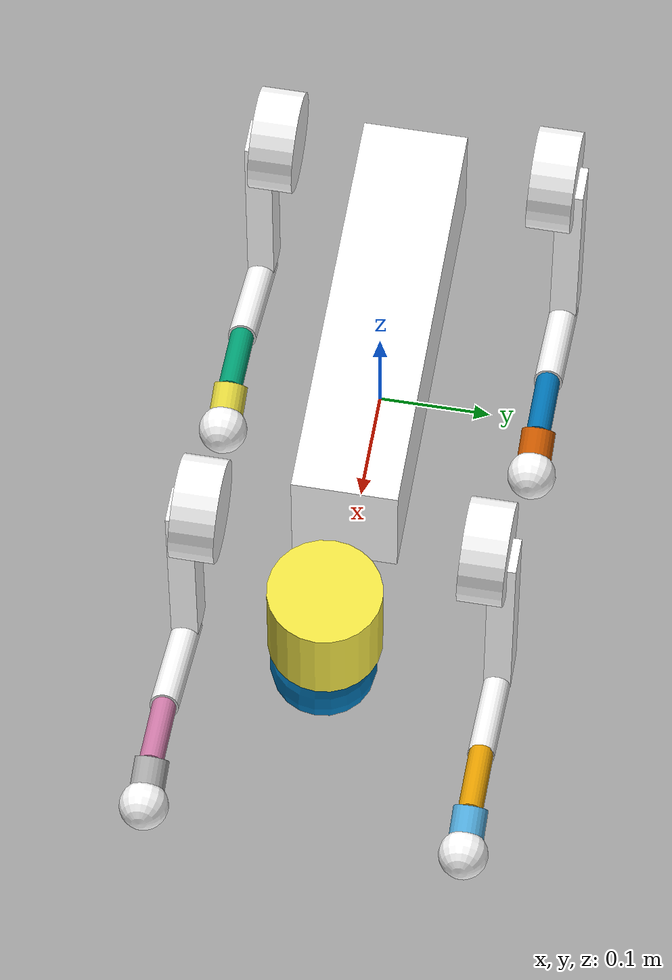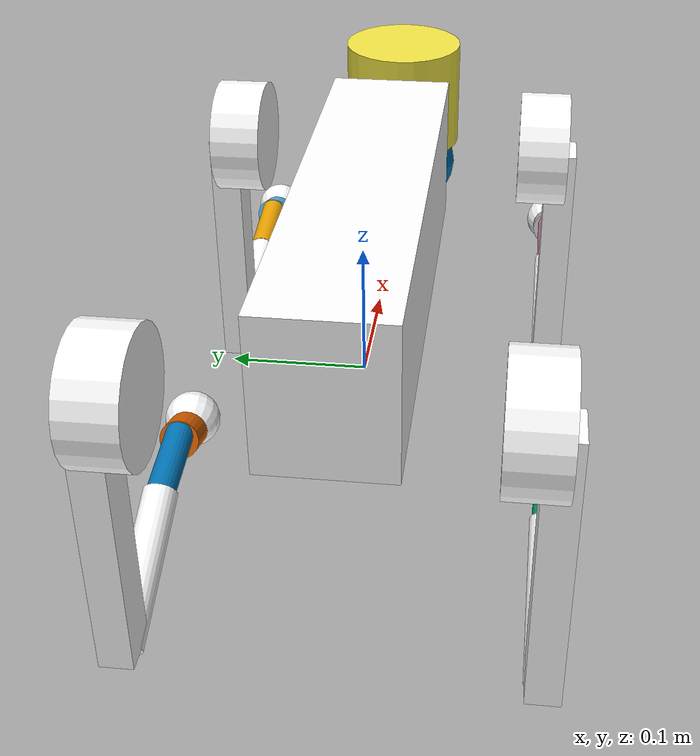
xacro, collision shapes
<?xml version="1.0" encoding="utf-8"?>

<robot name="go2" xmlns:xacro="http://www.ros.org/wiki/xacro">

  <xacro:property name="body_height" value="0.1"/>
  <xacro:property name="deg2rad"  value ="${(pi/180.0)}"/>
  <xacro:property name="damping"  value="0.5"/>
  <xacro:property name="calf_damping"  value="0.05"/>
  <xacro:property name="friction" value="0.2"/>
  <xacro:property name="calf_friction" value="0.8"/>

  <xacro:macro name="transmission_block" params="joint_name">
    <transmission name="tran1">
      <type>transmission_interface/SimpleTransmission</type>
      <joint name="${joint_name}">
        <hardwareInterface>hardware_interface/EffortJointInterface</hardwareInterface>
      </joint>
      <actuator name="motor1">
        <hardwareInterface>hardware_interface/EffortJointInterface</hardwareInterface>
        <mechanicalReduction>1</mechanicalReduction>
      </actuator>
    </transmission>
  </xacro:macro>

   <link name="world"/>

    <joint name="fixed_joint" type="fixed">
        <parent link="world"/>
        <child link="Base_Link"/>
        <origin rpy="0 0 0" xyz="0 0 ${body_height}"/>
    </joint>

    <link name="Base_Link"/>

    <joint name="Body" type="fixed">
        <parent link="Base_Link" />
        <child link="base" />
        <origin rpy="0 0 0" xyz="0 0 0"/>
    </joint>

  <link name="base">

    <inertial>
      <origin xyz="0.021112 0 -0.005366" rpy="0 0 0" />
      <mass value="6.921" />
      <inertia ixx="0.02448" ixy="0.00012166" ixz="0.0014849" iyy="0.098077" iyz="-3.12E-05" izz="0.107" />
    </inertial>

    <visual>
      <origin xyz="0 0 0" rpy="0 0 0" />
      <geometry>
        <mesh filename="$(find go2_description)/meshes/base.dae" />
      </geometry>
      <material name="">
        <color rgba="1 1 1 1" />
      </material>
    </visual>

    <collision>
      <origin rpy="0 0 0" xyz="0 0 0" />
      <geometry>
        <box size="0.3762 0.0935 0.114" />
      </geometry>
    </collision>

  </link>

  <link name="Head_upper">

    <inertial>
      <origin xyz="0 0 0" rpy="0 0 0" />
      <mass value="0.001" />
      <inertia ixx="9.6e-06" ixy="0" ixz="0" iyy="9.6e-06" iyz="0" izz="9.6e-06" />
    </inertial>

    <collision>
      <origin xyz="0 0 0" rpy="0 0 0" />
      <geometry>
        <cylinder radius="0.05" length="0.09" />
      </geometry>
    </collision>

  </link>

  <joint name="Head_upper_joint" type="fixed" dont_collapse="true">

    <origin xyz="0.285 0 0.01" rpy="0 0 0" />
    <parent link="base" />
    <child link="Head_upper" />
    <axis xyz="0 0 0" />

  </joint>

  <link name="Head_lower">

    <inertial>
      <origin xyz="0 0 0" rpy="0 0 0" />
      <mass value="0.001" />
      <inertia ixx="9.6e-06" ixy="0" ixz="0" iyy="9.6e-06" iyz="0" izz="9.6e-06" />
    </inertial>

    <collision>
      <origin xyz="0 0 0" rpy="0 0 0" />
      <geometry>
        <sphere radius="0.047" />
      </geometry>
    </collision>

  </link>

  <joint name="Head_lower_joint" type="fixed" dont_collapse="true">

    <origin xyz="0.008 0 -0.07" rpy="0 0 0" />
    <parent link="Head_upper" />
    <child link="Head_lower" />
    <axis xyz="0 0 0" />

  </joint>

  <link name="FL_hip">

    <inertial>
      <origin xyz="-0.0054 0.00194 -0.000105" rpy="0 0 0" />
      <mass value="0.678" />
      <inertia ixx="0.00048" ixy="-3.01E-06" ixz="1.11E-06" iyy="0.000884" iyz="-1.42E-06" izz="0.000596" />
    </inertial>

    <visual>
      <origin xyz="0 0 0" rpy="0 0 0" />
      <geometry>
        <mesh filename="$(find go2_description)/meshes/hip.dae" />
      </geometry>
      <material name="">
        <color rgba="1 1 1 1" />
      </material>
    </visual>

    <collision>
      <origin rpy="1.5707963267948966 0 0" xyz="0 0.08 0" />
      <geometry>
        <cylinder length="0.04" radius="0.046" />
      </geometry>
    </collision>

  </link>

  <joint name="FL_hip_joint" type="revolute">

    <origin xyz="0.1934 0.0465 0" rpy="0 0 0" />
    <parent link="base" />
    <child link="FL_hip" />
    <axis xyz="1 0 0" />
    <limit lower="-1.0472" upper="1.0472" effort="23.7" velocity="30.1" />
    <dynamics damping="${damping}" friction="${friction}"/>

  </joint>

  <link name="FL_thigh">

    <inertial>
      <origin xyz="-0.00374 -0.0223 -0.0327" rpy="0 0 0" />
      <mass value="1.152" />
      <inertia ixx="0.00584" ixy="8.72E-05" ixz="-0.000289" iyy="0.0058" iyz="0.000808" izz="0.00103" />
    </inertial>

    <visual>
      <origin xyz="0 0 0" rpy="0 0 0" />
      <geometry>
        <mesh filename="$(find go2_description)/meshes/thigh.dae" />
      </geometry>
      <material name="">
        <color rgba="1 1 1 1" />
      </material>
    </visual>

    <collision>
      <origin rpy="0 1.5707963267948966 0" xyz="0 0 -0.1065" />
      <geometry>
        <box size="0.213 0.0245 0.034" />
      </geometry>
    </collision>

  </link>

  <joint name="FL_thigh_joint" type="revolute">

    <origin xyz="0 0.0955 0" rpy="0 0 0" />
    <parent link="FL_hip" />
    <child link="FL_thigh" />
    <axis xyz="0 1 0" />
    <limit lower="-1.5708" upper="3.4907" effort="23.7" velocity="30.1" />
    <dynamics damping="${damping}" friction="${friction}"/>

  </joint>

  <link name="FL_calf">

    <inertial>
      <origin xyz="0.00548 -0.000975 -0.115" rpy="0 0 0" />
      <mass value="0.154" />
      <inertia ixx="0.00108" ixy="3.4E-07" ixz="1.72E-05" iyy="0.0011" iyz="8.28E-06" izz="3.29E-05" />
    </inertial>

    <visual>
      <origin xyz="0 0 0" rpy="0 0 0" />
      <geometry>
        <mesh filename="$(find go2_description)/meshes/calf.dae" />
      </geometry>
      <material name="">
        <color rgba="1 1 1 1" />
      </material>
    </visual>

    <collision>
      <origin rpy="0 -0.21 0" xyz="0.008 0 -0.06" />
      <geometry>
        <cylinder length="0.12" radius="0.012" />
      </geometry>
    </collision>

  </link>

  <joint name="FL_calf_joint" type="revolute">

    <origin xyz="0 0 -0.213" rpy="0 0 0" />
    <parent link="FL_thigh" />
    <child link="FL_calf" />
    <axis xyz="0 1 0" />
    <limit lower="-2.7227" upper="-0.83776" effort="45.43" velocity="15.70" />
    <dynamics damping="${calf_damping}" friction="${calf_friction}"/>

  </joint>

  <link name="FL_calflower">

    <collision>
      <origin rpy="0 0 0" xyz="0 0 0" />
      <geometry>
        <cylinder length="0.065" radius="0.011" />
      </geometry>
    </collision>

  </link>

  <joint name="FL_calflower_joint" type="fixed">

    <origin xyz="0.020 0 -0.148" rpy="0 0.05 0" />
    <parent link="FL_calf" />
    <child link="FL_calflower" />
    <axis xyz="0 0 0" />

  </joint>

  <link name="FL_calflower1">

    <collision>
      <origin rpy="0 0 0" xyz="0 0 0" />
      <geometry>
        <cylinder length="0.03" radius="0.0155" />
      </geometry>
    </collision>

  </link>

  <joint name="FL_calflower1_joint" type="fixed">

    <origin xyz="-0.01 0 -0.04" rpy="0 0.48 0" />
    <parent link="FL_calflower" />
    <child link="FL_calflower1" />
    <axis xyz="0 0 0" />

  </joint>

  <link name="FL_foot">

    <inertial>
      <origin xyz="0 0 0" rpy="0 0 0" />
      <mass value="0.04" />
      <inertia ixx="9.6e-06" ixy="0" ixz="0" iyy="9.6e-06" iyz="0" izz="9.6e-06" />
    </inertial>

    <visual>
      <origin xyz="0 0 0" rpy="0 0 0" />
      <geometry>
        <mesh filename="$(find go2_description)/meshes/foot.dae" />
      </geometry>
      <material name="">
        <color rgba="1 1 1 1" />
      </material>
    </visual>

    <collision>
      <origin rpy="0 0 0" xyz="-0.002 0 0" />
      <geometry>
        <sphere radius="0.022" />
      </geometry>
    </collision>

  </link>

  <joint name="FL_foot_joint" type="fixed" dont_collapse="true">

    <origin xyz="0 0 -0.213" rpy="0 0 0" />
    <parent link="FL_calf" />
    <child link="FL_foot" />
    <axis xyz="0 0 0" />

  </joint>

  <link name="FR_hip">

    <inertial>
      <origin xyz="-0.0054 -0.00194 -0.000105" rpy="0 0 0" />
      <mass value="0.678" />
      <inertia ixx="0.00048" ixy="3.01E-06" ixz="1.11E-06" iyy="0.000884" iyz="1.42E-06" izz="0.000596" />
    </inertial>

    <visual>
      <origin xyz="0 0 0" rpy="3.1415 0 0" />
      <geometry>
        <mesh filename="$(find go2_description)/meshes/hip.dae" />
      </geometry>
      <material name="">
        <color rgba="1 1 1 1" />
      </material>
    </visual>

    <collision>
      <origin rpy="1.5707963267948966 0 0" xyz="0 -0.08 0" />
      <geometry>
        <cylinder length="0.04" radius="0.046" />
      </geometry>
    </collision>

  </link>

  <joint name="FR_hip_joint" type="revolute">

    <origin xyz="0.1934 -0.0465 0" rpy="0 0 0" />
    <parent link="base" />
    <child link="FR_hip" />
    <axis xyz="1 0 0" />
    <limit lower="-1.0472" upper="1.0472" effort="23.7" velocity="30.1" />
    <dynamics damping="${damping}" friction="${friction}"/>

  </joint>

  <link name="FR_thigh">

    <inertial>
      <origin xyz="-0.00374 0.0223 -0.0327" rpy="0 0 0" />
      <mass value="1.152" />
      <inertia ixx="0.00584" ixy="-8.72E-05" ixz="-0.000289" iyy="0.0058" iyz="-0.000808" izz="0.00103" />
    </inertial>

    <visual>
      <origin xyz="0 0 0" rpy="0 0 0" />
      <geometry>
        <mesh filename="$(find go2_description)/meshes/thigh_mirror.dae" />
      </geometry>
      <material name="">
        <color rgba="1 1 1 1" />
      </material>
    </visual>

    <collision>
      <origin rpy="0 1.5707963267948966 0" xyz="0 0 -0.1065" />
      <geometry>
        <box size="0.213 0.0245 0.034" />
      </geometry>
    </collision>

  </link>

  <joint name="FR_thigh_joint" type="revolute">

    <origin xyz="0 -0.0955 0" rpy="0 0 0" />
    <parent link="FR_hip" />
    <child link="FR_thigh" />
    <axis xyz="0 1 0" />
    <limit lower="-1.5708" upper="3.4907" effort="23.7" velocity="30.1" />
    <dynamics damping="${damping}" friction="${friction}"/>

  </joint>

  <link name="FR_calf">

    <inertial>
      <origin xyz="0.00548 0.000975 -0.115" rpy="0 0 0" />
      <mass value="0.154" />
      <inertia ixx="0.00108" ixy="-3.4E-07" ixz="1.72E-05" iyy="0.0011" iyz="-8.28E-06" izz="3.29E-05" />
    </inertial>

    <visual>
      <origin xyz="0 0 0" rpy="0 0 0" />
      <geometry>
        <mesh filename="$(find go2_description)/meshes/calf_mirror.dae" />
      </geometry>
      <material name="">
        <color rgba="1 1 1 1" />
      </material>
    </visual>

    <collision>
      <origin rpy="0 -0.2 0" xyz="0.01 0 -0.06" />
      <geometry>
        <cylinder length="0.12" radius="0.013" />
      </geometry>
    </collision>

  </link>

  <joint name="FR_calf_joint" type="revolute">

    <origin xyz="0 0 -0.213" rpy="0 0 0" />
    <parent link="FR_thigh" />
    <child link="FR_calf" />
    <axis xyz="0 1 0" />
    <limit lower="-2.7227" upper="-0.83776" effort="45.43" velocity="15.70" />
    <dynamics damping="${calf_damping}" friction="${calf_friction}"/>

  </joint>

  <link name="FR_calflower">

    <collision>
      <origin rpy="0 0 0" xyz="0 0 0" />
      <geometry>
        <cylinder length="0.065" radius="0.011" />
      </geometry>
    </collision>

  </link>

  <joint name="FR_calflower_joint" type="fixed">

    <origin xyz="0.020 0 -0.148" rpy="0 0.05 0" />
    <parent link="FR_calf" />
    <child link="FR_calflower" />
    <axis xyz="0 0 0" />

  </joint>

  <link name="FR_calflower1">

    <collision>
      <origin rpy="0 0 0" xyz="0 0 0" />
      <geometry>
        <cylinder length="0.03" radius="0.0155" />
      </geometry>
    </collision>

  </link>

  <joint name="FR_calflower1_joint" type="fixed">

    <origin xyz="-0.01 0 -0.04" rpy="0 0.48 0" />
    <parent link="FR_calflower" />
    <child link="FR_calflower1" />
    <axis xyz="0 0 0" />

  </joint>

  <link name="FR_foot">

    <inertial>
      <origin xyz="0 0 0" rpy="0 0 0" />
      <mass value="0.04" />
      <inertia ixx="9.6e-06" ixy="0" ixz="0" iyy="9.6e-06" iyz="0" izz="9.6e-06" />
    </inertial>

    <visual>
      <origin xyz="0 0 0" rpy="0 0 0" />
      <geometry>
        <mesh filename="$(find go2_description)/meshes/foot.dae" />
      </geometry>
      <material name="">
        <color rgba="1 1 1 1" />
      </material>
    </visual>

    <collision>
      <origin rpy="0 0 0" xyz="-0.002 0 0" />
      <geometry>
        <sphere radius="0.022" />
      </geometry>
    </collision>

  </link>

  <joint name="FR_foot_joint" type="fixed" dont_collapse="true">

    <origin xyz="0 0 -0.213" rpy="0 0 0" />
    <parent link="FR_calf" />
    <child link="FR_foot" />
    <axis xyz="0 0 0" />

  </joint>

  <link name="RL_hip">

    <inertial>
      <origin xyz="0.0054 0.00194 -0.000105" rpy="0 0 0" />
      <mass value="0.678" />
      <inertia ixx="0.00048" ixy="3.01E-06" ixz="-1.11E-06" iyy="0.000884" iyz="-1.42E-06" izz="0.000596" />
    </inertial>

    <visual>
      <origin xyz="0 0 0" rpy="0 3.1415 0" />
      <geometry>
        <mesh filename="$(find go2_description)/meshes/hip.dae" />
      </geometry>
      <material name="">
        <color rgba="1 1 1 1" />
      </material>
    </visual>

    <collision>
      <origin rpy="1.5707963267948966 0 0" xyz="0 0.08 0" />
      <geometry>
        <cylinder length="0.04" radius="0.046" />
      </geometry>
    </collision>

  </link>

  <joint name="RL_hip_joint" type="revolute">

    <origin xyz="-0.1934 0.0465 0" rpy="0 0 0" />
    <parent link="base" />
    <child link="RL_hip" />
    <axis xyz="1 0 0" />
    <limit lower="-1.0472" upper="1.0472" effort="23.7" velocity="30.1" />
    <dynamics damping="${damping}" friction="${friction}"/>

  </joint>

  <link name="RL_thigh">

    <inertial>
      <origin xyz="-0.00374 -0.0223 -0.0327" rpy="0 0 0" />
      <mass value="1.152" />
      <inertia ixx="0.00584" ixy="8.72E-05" ixz="-0.000289" iyy="0.0058" iyz="0.000808" izz="0.00103" />
    </inertial>

    <visual>
      <origin xyz="0 0 0" rpy="0 0 0" />
      <geometry>
        <mesh filename="$(find go2_description)/meshes/thigh.dae" />
      </geometry>
      <material name="">
        <color rgba="1 1 1 1" />
      </material>
    </visual>

    <collision>
      <origin rpy="0 1.5707963267948966 0" xyz="0 0 -0.1065" />
      <geometry>
        <box size="0.213 0.0245 0.034" />
      </geometry>
    </collision>

  </link>

  <joint name="RL_thigh_joint" type="revolute">

    <origin xyz="0 0.0955 0" rpy="0 0 0" />
    <parent link="RL_hip" />
    <child link="RL_thigh" />
    <axis xyz="0 1 0" />
    <limit lower="-0.5236" upper="4.5379" effort="23.7" velocity="30.1" />
    <dynamics damping="${damping}" friction="${friction}"/>

  </joint>

  <link name="RL_calf">

    <inertial>
      <origin xyz="0.00548 -0.000975 -0.115" rpy="0 0 0" />
      <mass value="0.154" />
      <inertia ixx="0.00108" ixy="3.4E-07" ixz="1.72E-05" iyy="0.0011" iyz="8.28E-06" izz="3.29E-05" />
    </inertial>

    <visual>
      <origin xyz="0 0 0" rpy="0 0 0" />
      <geometry>
        <mesh filename="$(find go2_description)/meshes/calf.dae" />
      </geometry>
      <material name="">
        <color rgba="1 1 1 1" />
      </material>
    </visual>

    <collision>
      <origin rpy="0 -0.2 0" xyz="0.01 0 -0.06" />
      <geometry>
        <cylinder length="0.12" radius="0.013" />
      </geometry>
    </collision>

  </link>

  <joint name="RL_calf_joint" type="revolute">

    <origin xyz="0 0 -0.213" rpy="0 0 0" />
    <parent link="RL_thigh" />
    <child link="RL_calf" />
    <axis xyz="0 1 0" />
    <limit lower="-2.7227" upper="-0.83776" effort="45.43" velocity="15.70" />
    <dynamics damping="${calf_damping}" friction="${calf_friction}"/>

  </joint>

  <link name="RL_calflower">

    <collision>
      <origin rpy="0 0 0" xyz="0 0 0" />
      <geometry>
        <cylinder length="0.065" radius="0.011" />
      </geometry>
    </collision>

  </link>

  <joint name="RL_calflower_joint" type="fixed">

    <origin xyz="0.020 0 -0.148" rpy="0 0.05 0" />
    <parent link="RL_calf" />
    <child link="RL_calflower" />
    <axis xyz="0 0 0" />

  </joint>

  <link name="RL_calflower1">

    <collision>
      <origin rpy="0 0 0" xyz="0 0 0" />
      <geometry>
        <cylinder length="0.03" radius="0.0155" />
      </geometry>
    </collision>

  </link>

  <joint name="RL_calflower1_joint" type="fixed">

    <origin xyz="-0.01 0 -0.04" rpy="0 0.48 0" />
    <parent link="RL_calflower" />
    <child link="RL_calflower1" />
    <axis xyz="0 0 0" />

  </joint>

  <link name="RL_foot">

    <inertial>
      <origin xyz="0 0 0" rpy="0 0 0" />
      <mass value="0.04" />
      <inertia ixx="9.6e-06" ixy="0" ixz="0" iyy="9.6e-06" iyz="0" izz="9.6e-06" />
    </inertial>

    <visual>
      <origin xyz="0 0 0" rpy="0 0 0" />
      <geometry>
        <mesh filename="$(find go2_description)/meshes/foot.dae" />
      </geometry>
      <material name="">
        <color rgba="1 1 1 1" />
      </material>
    </visual>

    <collision>
      <origin rpy="0 0 0" xyz="-0.002 0 0" />
      <geometry>
        <sphere radius="0.022" />
      </geometry>
    </collision>

  </link>

  <joint name="RL_foot_joint" type="fixed" dont_collapse="true">

    <origin xyz="0 0 -0.213" rpy="0 0 0" />
    <parent link="RL_calf" />
    <child link="RL_foot" />
    <axis xyz="0 0 0" />

  </joint>

  <link name="RR_hip">

    <inertial>
      <origin xyz="0.0054 -0.00194 -0.000105" rpy="0 0 0" />
      <mass value="0.678" />
      <inertia ixx="0.00048" ixy="-3.01E-06" ixz="-1.11E-06" iyy="0.000884" iyz="1.42E-06" izz="0.000596" />
    </inertial>

    <visual>
      <origin xyz="0 0 0" rpy="3.1415 3.1415 0" />
      <geometry>
        <mesh filename="$(find go2_description)/meshes/hip.dae" />
      </geometry>
      <material name="">
        <color rgba="1 1 1 1" />
      </material>
    </visual>

    <collision>
      <origin rpy="1.5707963267948966 0 0" xyz="0 -0.08 0" />
      <geometry>
        <cylinder length="0.04" radius="0.046" />
      </geometry>
    </collision>

  </link>

  <joint name="RR_hip_joint" type="revolute">

    <origin xyz="-0.1934 -0.0465 0" rpy="0 0 0" />
    <parent link="base" />
    <child link="RR_hip" />
    <axis xyz="1 0 0" />
    <limit lower="-1.0472" upper="1.0472" effort="23.7" velocity="30.1" />
    <dynamics damping="${damping}" friction="${friction}"/>

  </joint>

  <link name="RR_thigh">

    <inertial>
      <origin xyz="-0.00374 0.0223 -0.0327" rpy="0 0 0" />
      <mass value="1.152" />
      <inertia ixx="0.00584" ixy="-8.72E-05" ixz="-0.000289" iyy="0.0058" iyz="-0.000808" izz="0.00103" />
    </inertial>

    <visual>
      <origin xyz="0 0 0" rpy="0 0 0" />
      <geometry>
        <mesh filename="$(find go2_description)/meshes/thigh_mirror.dae" />
      </geometry>
      <material name="">
        <color rgba="1 1 1 1" />
      </material>
    </visual>

    <collision>
      <origin rpy="0 1.5707963267948966 0" xyz="0 0 -0.1065" />
      <geometry>
        <box size="0.213 0.0245 0.034" />
      </geometry>
    </collision>

  </link>

  <joint name="RR_thigh_joint" type="revolute">

    <origin xyz="0 -0.0955 0" rpy="0 0 0" />
    <parent link="RR_hip" />
    <child link="RR_thigh" />
    <axis xyz="0 1 0" />
    <limit lower="-0.5236" upper="4.5379" effort="23.7" velocity="30.1" />
    <dynamics damping="${damping}" friction="${friction}"/>

  </joint>

  <link name="RR_calf">

    <inertial>
      <origin xyz="0.00548 0.000975 -0.115" rpy="0 0 0" />
      <mass value="0.154" />
      <inertia ixx="0.00108" ixy="-3.4E-07" ixz="1.72E-05" iyy="0.0011" iyz="-8.28E-06" izz="3.29E-05" />
    </inertial>

    <visual>
      <origin xyz="0 0 0" rpy="0 0 0" />
      <geometry>
        <mesh filename="$(find go2_description)/meshes/calf_mirror.dae" />
      </geometry>
      <material name="">
        <color rgba="1 1 1 1" />
      </material>
    </visual>

    <collision>
      <origin rpy="0 -0.2 0" xyz="0.01 0 -0.06" />
      <geometry>
        <cylinder length="0.12" radius="0.013" />
      </geometry>
    </collision>

  </link>

  <joint name="RR_calf_joint" type="revolute">

    <origin xyz="0 0 -0.213" rpy="0 0 0" />
    <parent link="RR_thigh" />
    <child link="RR_calf" />
    <axis xyz="0 1 0" />
    <limit lower="-2.7227" upper="-0.83776" effort="45.43" velocity="15.70" />
    <dynamics damping="${calf_damping}" friction="${calf_friction}"/>

  </joint>

  <link name="RR_calflower">

    <collision>
      <origin rpy="0 0 0" xyz="0 0 0" />
      <geometry>
        <cylinder length="0.065" radius="0.011" />
      </geometry>
    </collision>

  </link>

  <joint name="RR_calflower_joint" type="fixed">

    <origin xyz="0.020 0 -0.148" rpy="0 0.05 0" />
    <parent link="RR_calf" />
    <child link="RR_calflower" />
    <axis xyz="0 0 0" />

  </joint>

  <link name="RR_calflower1">

    <collision>
      <origin rpy="0 0 0" xyz="0 0 0" />
      <geometry>
        <cylinder length="0.03" radius="0.0155" />
      </geometry>
    </collision>

  </link>

  <joint name="RR_calflower1_joint" type="fixed">

    <origin xyz="-0.01 0 -0.04" rpy="0 0.48 0" />
    <parent link="RR_calflower" />
    <child link="RR_calflower1" />
    <axis xyz="0 0 0" />

  </joint>

  <link name="RR_foot">

    <inertial>
      <origin xyz="0 0 0" rpy="0 0 0" />
      <mass value="0.04" />
      <inertia ixx="9.6e-06" ixy="0" ixz="0" iyy="9.6e-06" iyz="0" izz="9.6e-06" />
    </inertial>

    <visual>
      <origin xyz="0 0 0" rpy="0 0 0" />
      <geometry>
        <mesh filename="$(find go2_description)/meshes/foot.dae" />
      </geometry>
      <material name="">
        <color rgba="1 1 1 1" />
      </material>
    </visual>

    <collision>
      <origin rpy="0 0 0" xyz="-0.002 0 0" />
      <geometry>
        <sphere radius="0.022" />
      </geometry>
    </collision>

  </link>

  <joint name="RR_foot_joint" type="fixed" dont_collapse="true">

    <origin xyz="0 0 -0.213" rpy="0 0 0" />
    <parent link="RR_calf" />
    <child link="RR_foot" />
    <axis xyz="0 0 0" />

  </joint>

  <link name="imu">

    <inertial>
      <origin xyz="0 0 0" rpy="0 0 0" />
      <mass value="0" />
      <inertia ixx="0" ixy="0" ixz="0" iyy="0" iyz="0" izz="0" />
    </inertial>

  </link>

  <joint name="imu_joint" type="fixed">
    <origin xyz="-0.02557 0 0.04232" rpy="0 0 0" />
    <parent link="base" />
    <child link="imu" />
    <axis xyz="0 0 0" />

  </joint>

  <link name="radar">

    <inertial>
      <origin xyz="0 0 0" rpy="0 0 0" />
      <mass value="0" />
      <inertia ixx="0" ixy="0" ixz="0" iyy="0" iyz="0" izz="0" />
    </inertial>

  </link>

  <joint name="radar_joint" type="fixed">

    <origin xyz="0.28945 0 -0.046825" rpy="0 2.8782 0" />
    <parent link="base" />
    <child link="radar" />
    <axis xyz="0 0 0" />

  </joint>

  <xacro:transmission_block joint_name="FL_hip_joint"/>
  <xacro:transmission_block joint_name="FL_thigh_joint"/>
  <xacro:transmission_block joint_name="FL_calf_joint"/>

  <xacro:transmission_block joint_name="FR_hip_joint"/>
  <xacro:transmission_block joint_name="FR_thigh_joint"/>
  <xacro:transmission_block joint_name="FR_calf_joint"/>

  <xacro:transmission_block joint_name="RL_hip_joint"/>
  <xacro:transmission_block joint_name="RL_thigh_joint"/>
  <xacro:transmission_block joint_name="RL_calf_joint"/>

  <xacro:transmission_block joint_name="RR_hip_joint"/>
  <xacro:transmission_block joint_name="RR_thigh_joint"/>
  <xacro:transmission_block joint_name="RR_calf_joint"/>

  <gazebo>

    <plugin name="gazebo_ros_control" filename="libgazebo_ros_control.so">
      <robotNamespace>/go2</robotNamespace>
    </plugin>

    <plugin name="imu_plugin" filename="libgazebo_ros_imu.so">
      <alwaysOn>true</alwaysOn>
      <bodyName>base</bodyName>
      <topicName>imu</topicName>
      <serviceName>imu_service</serviceName>
      <gaussianNoise>0.0</gaussianNoise>
      <updateRate>400.0</updateRate>
    </plugin>

  </gazebo>

</robot>
